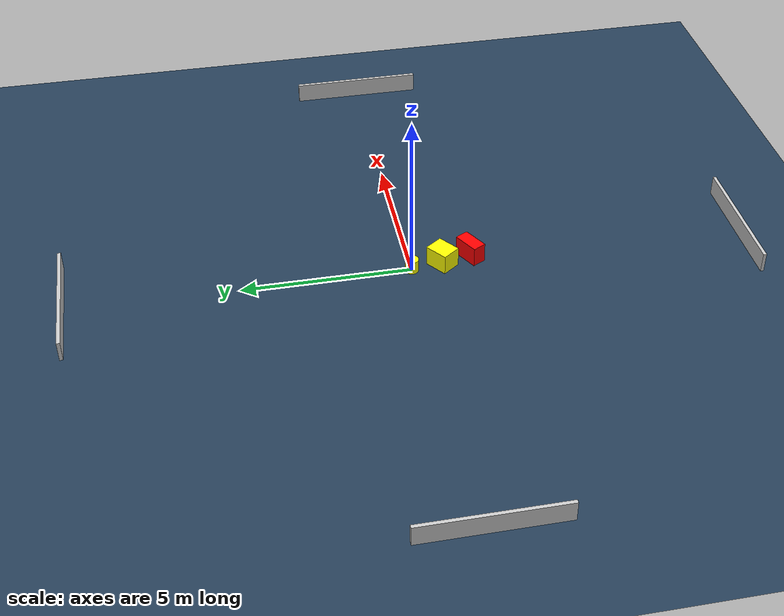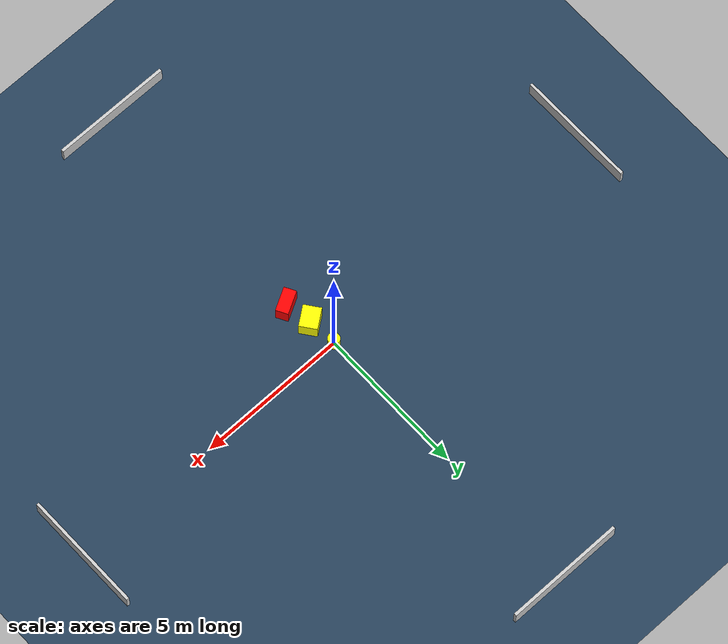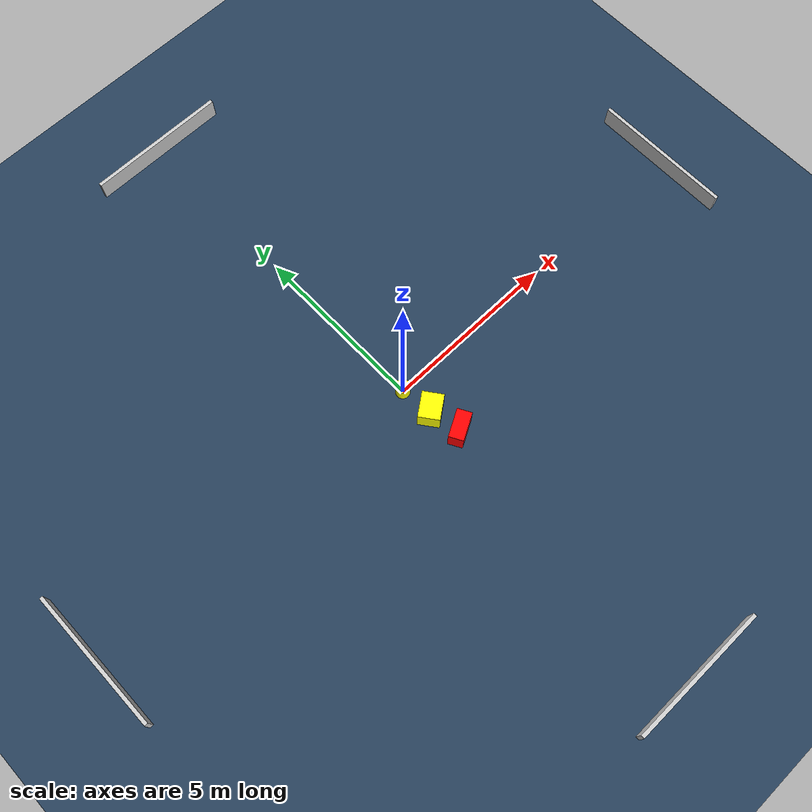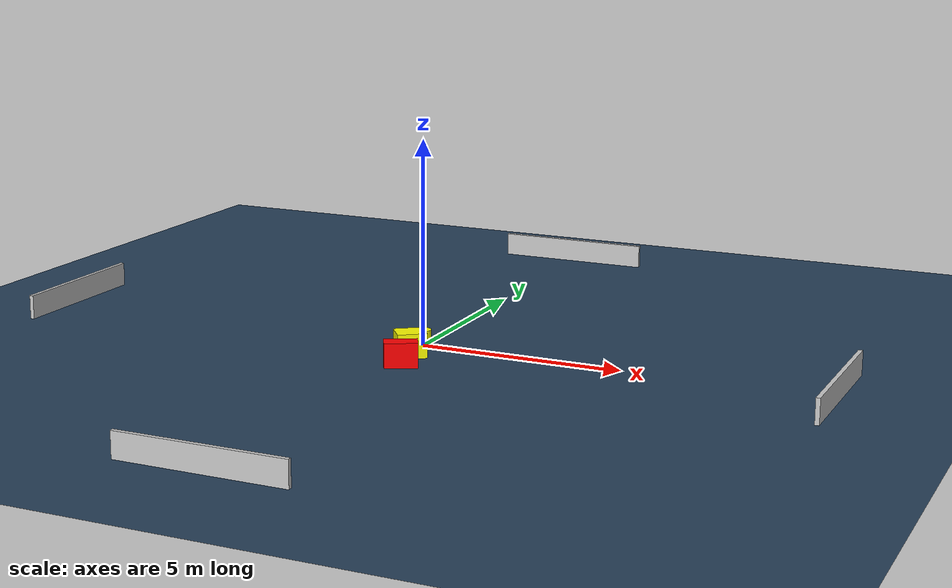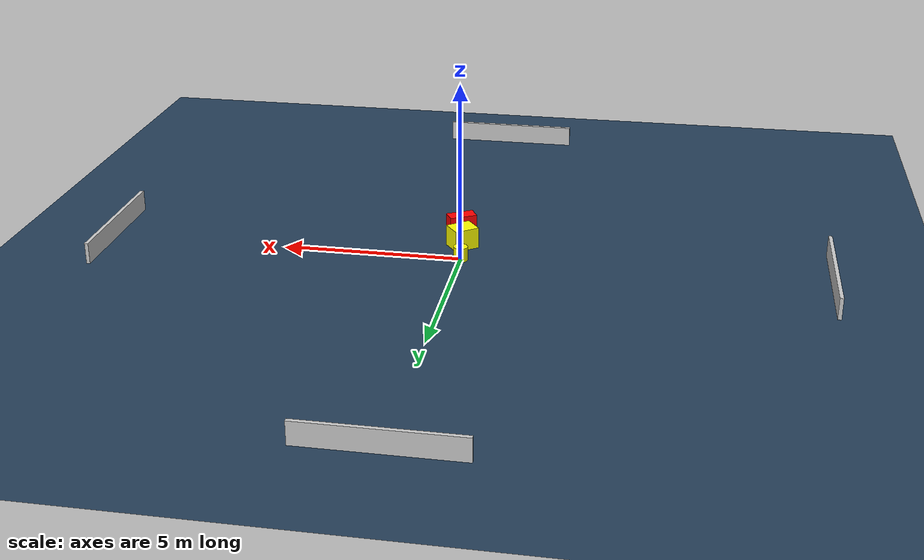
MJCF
<?xml version="1.0" ?>
<mujoco model="generated_environment">
  <option timestep="0.01" integrator="RK4" cone="elliptic"/>
  <default>
    <geom density="1"/>
  </default>
  <asset>
    <texture builtin="gradient" height="3072" name="skybox" rgb1="0.3 0.5 0.7" rgb2="0 0 0" type="skybox" width="512"/>
    <texture builtin="checker" height="300" name="groundplane" rgb1="0.2 0.3 0.4" rgb2="0.1 0.2 0.3" type="2d" width="300"/>
    <material name="groundplane" reflectance="0.2" texrepeat="5 5" texture="groundplane"/>
  </asset>
  <worldbody>
    <light dir="0 0 -1" directional="true" pos="0 0 1.5"/>
    <geom condim="3" friction="0.5 0.005 0.001" material="groundplane" name="floor" pos="0 0 0" size="0 0 0.05" type="plane"/>
    <body name="walls">
      <geom name="wall_1" condim="4" pos="-10.0 0.0 0.3" rgba="0.800000011920929 0.800000011920929 0.800000011920929 1.0" size="0.05 2.0 0.3" type="box"/>
      <geom name="wall_2" condim="4" pos="10.0 0.0 0.3" rgba="0.800000011920929 0.800000011920929 0.800000011920929 1.0" size="0.05 2.0 0.3" type="box"/>
      <geom name="wall_3" condim="4" pos="0.0 -10.0 0.3" rgba="0.800000011920929 0.800000011920929 0.800000011920929 1.0" size="2.0 0.05 0.3" type="box"/>
      <geom name="wall_4" condim="4" pos="0.0 10.0 0.3" rgba="0.800000011920929 0.800000011920929 0.800000011920929 1.0" size="2.0 0.05 0.3" type="box"/>
    </body>
    <body name="robot">
      <joint name="joint_x" type="slide" pos="0 0 0" axis="1 0 0"/>
      <joint name="joint_y" type="slide" pos="0 0 0" axis="0 1 0"/>
      <geom name="robot" type="cylinder" pos="0.0 0.0 0.2" size="0.2 0.2 0.0" mass="5.0" friction="1.0 0.005 0.0001" condim="4" rgba="1.0 1.0 0.0 1.0"/>
    </body>
    <body name="obstacle_1_movable">
      <geom name="obstacle_1_movable" condim="4" pos="0.10470461966584187 -0.9292558920376202 0.3" euler="0 0 306.6172825530691" friction="0.0 0.005 0.001" rgba="1.0 1.0 0.0 1.0" size="0.29430389403504503 0.35731845434926124 0.3" type="box" mass="0.1"/>
      <joint type="free"/>
    </body>
    <body name="obstacle_2_static">
      <geom name="obstacle_2_static" condim="4" pos="0.2852708070050907 -1.8070081461548213 0.3" euler="0 0 28.861232553093288" friction="0.0 0.005 0.001" rgba="1.0 0.0 0.0 1.0" size="0.3972870143979678 0.205438635312691 0.3" type="box"/>
    </body>
  </worldbody>
  <actuator>
    <motor name="actuator_x" joint="joint_x" gear="1" ctrlrange="-1 1"/>
    <motor name="actuator_y" joint="joint_y" gear="1" ctrlrange="-1 1"/>
  </actuator>
</mujoco>
